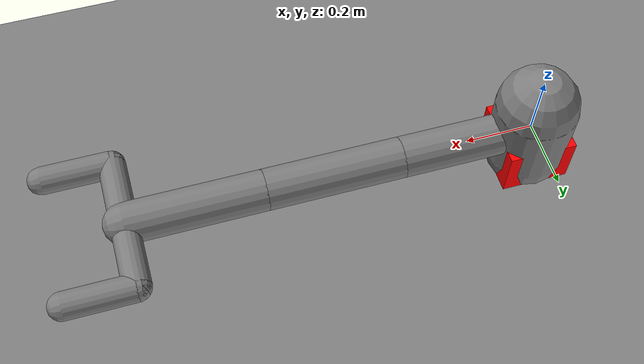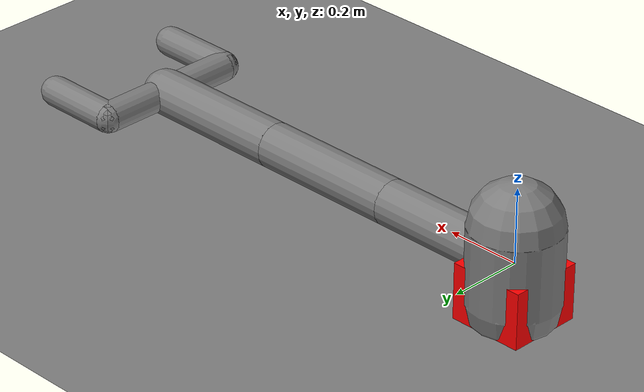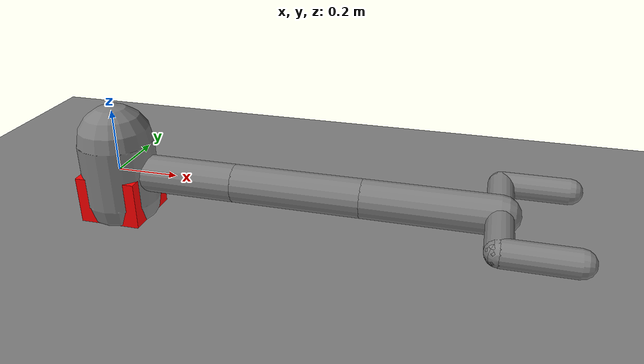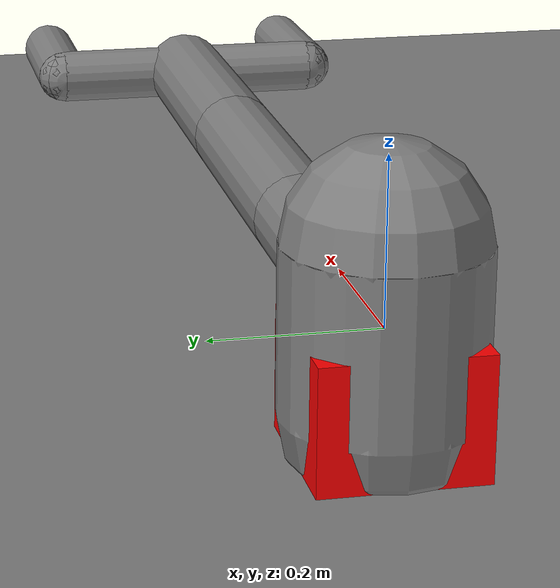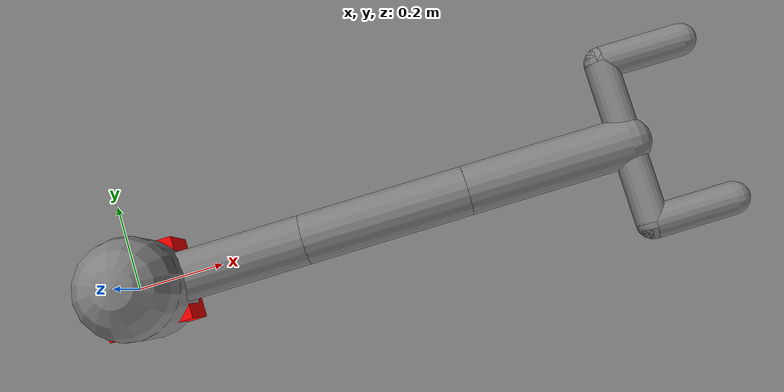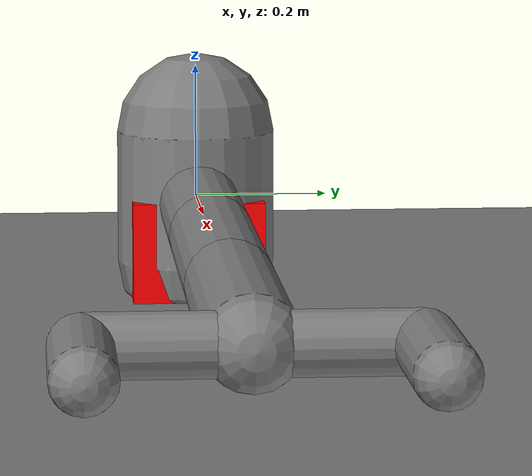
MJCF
<mujoco model="arm3d">
    <compiler inertiafromgeom="true" angle="radian" coordinate="local" />
    <option timestep="0.01" gravity="0 0 0" iterations="20" integrator="Euler" />

    <default>
        <joint armature='0.04' damping="1" limited="true"/>
        <geom friction=".8 .1 .1" density="300" margin="0.002" condim="1" contype="1" conaffinity="1"/>
    </default>

    <worldbody>
        <light diffuse=".5 .5 .5" pos="0 0 3" dir="0 0 -1"/>
        <geom type="plane" pos="0 0.5 -0.15" size="2 2 0.1" contype="1" conaffinity="1"/>

        <body name="palm" pos="0 0 0">
            <geom type="capsule" fromto="0 0 -0.1 0 0 0.1" size="0.12"/>
            <body name="proximal_1" pos="0 0 0">
                <joint name="proximal_j_1" type="hinge" pos="0 0 0" axis="0 0 1" range="-2.5236 2.3963" damping="1.0" />
                <geom type="capsule"  fromto="0 0 0 0.4 0 0" size="0.06" contype="1" conaffinity="1"/>
                <body name="distal_1" pos="0.4 0 0">
                    <joint name="distal_j_1" type="hinge" pos="0 0 0" axis="0 0 1" range="-2.3213 2.3" damping="1.0"/>
                    <geom type="capsule"  fromto="0 0 0 0.4 0 0" size="0.06" contype="1" conaffinity="1"/>
                    <body name="distal_2" pos="0.4 0 0">
                        <joint name="distal_j_2" type="hinge" pos="0 0 0" axis="0 1 0" range="-2.3213 2.3" damping="1.0"/>
                        <geom type="capsule" fromto="0 0 0 0.4 0 0" size="0.06" contype="1" conaffinity="1"/>
                        <body name="distal_4" pos="0.4 0 0">
                            <site name="tip arml" pos="0.1 -0.2 0" size="0.01" />
                            <site name="tip armr" pos="0.1 0.2 0" size="0.01" />
                            <joint name="distal_j_3" type="hinge" pos="0 0 0" axis="1 0 0" range="-3.3213 3.3" damping="0.5"/>
                            <geom type="capsule" fromto="0 -0.2 0 0 0.2 0" size="0.04" contype="1" conaffinity="1" />
                            <geom type="capsule" fromto="0 -0.2 0 0.2 -0.2 0" size="0.04" contype="1" conaffinity="1" />
                            <geom type="capsule" fromto="0 0.2 0 0.2 0.2 0" size="0.04" contype="1" conaffinity="1" />
                        </body>
                    </body>
                </body>
            </body>
        </body>

        <body name="object" pos="0.0 0.0 -0.1">
            <geom rgba="1. 1. 1. 1" type="box" size="0.05 0.05 0.05" density='0.00001' contype="1" conaffinity="1"/>
            <joint name="obj_slidey" type="slide" pos="0.025 0.025 0.025" axis="0 1 0" range="-10.3213 10.3" damping="0.5"/>
            <joint name="obj_slidex" type="slide" pos="0.025 0.025 0.025" axis="1 0 0" range="-10.3213 10.3" damping="0.5"/>
        </body>

       <body name="goal" pos="0.0 0.0 -0.1">
            <geom rgba="1. 0. 0. 1" type="box" size="0.1 0.1 0.1" density='0.00001' contype="0" conaffinity="0"/>
            <joint name="goal_slidey" type="slide" pos="0 0 0" axis="0 1 0" range="-10.3213 10.3" damping="0.5"/>
            <joint name="goal_slidex" type="slide" pos="0 0 0" axis="1 0 0" range="-10.3213 10.3" damping="0.5"/>
        </body>

    </worldbody>

    <actuator>
        <motor joint="proximal_j_1" ctrlrange="-2 2" ctrllimited="true"/>
        <motor joint="distal_j_1" ctrlrange="-2 2" ctrllimited="true"/>
        <motor joint="distal_j_2" ctrlrange="-2 2" ctrllimited="true"/>
        <motor joint="distal_j_3" ctrlrange="-2 2" ctrllimited="true"/>
    </actuator>
</mujoco>
